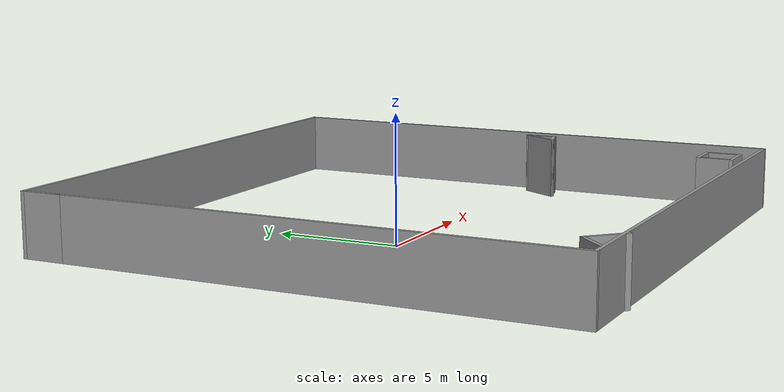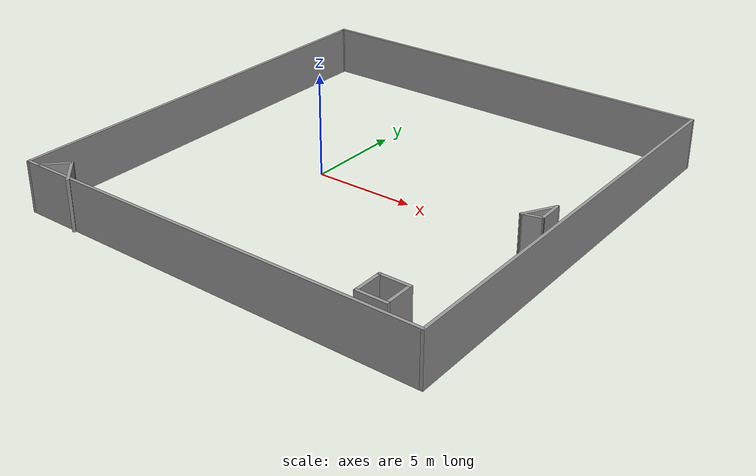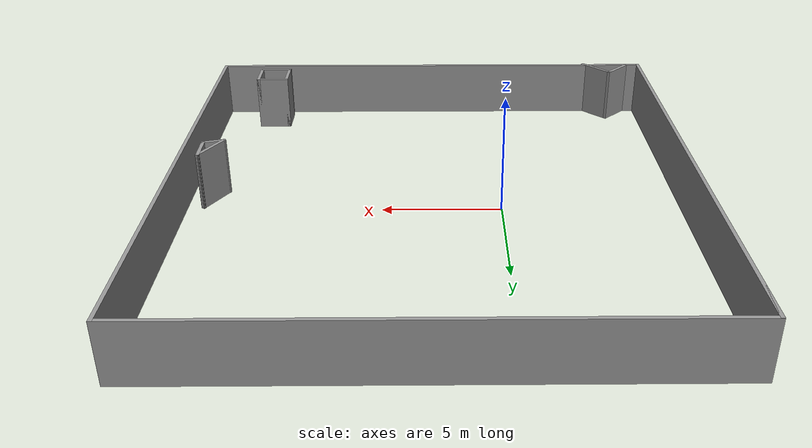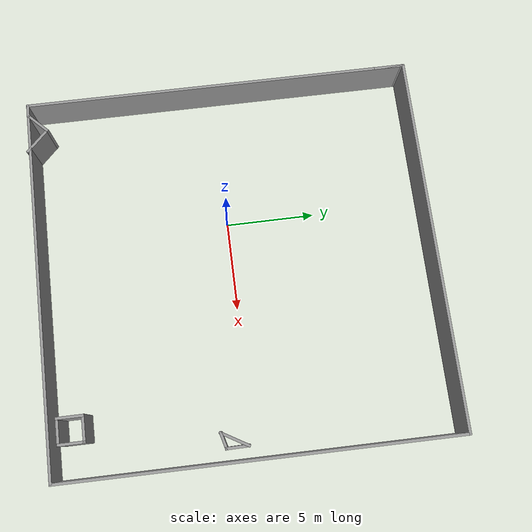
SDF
<?xml version='1.0'?>
<sdf version='1.7'>
  <model name='empty'>
    <pose>2.82851 0.215815 0 0 -0 0</pose>
    <link name='Wall_11'>
      <collision name='Wall_11_Collision'>
        <geometry>
          <box>
            <size>1.5 0.15 2.5</size>
          </box>
        </geometry>
        <pose>0 0 1.25 0 -0 0</pose>
      </collision>
      <visual name='Wall_11_Visual'>
        <pose>0 0 1.25 0 -0 0</pose>
        <geometry>
          <box>
            <size>1.5 0.15 2.5</size>
          </box>
        </geometry>
        <material>
          <script>
            <uri>file://media/materials/scripts/gazebo.material</uri>
            <name>Gazebo/Grey</name>
          </script>
          <ambient>1 1 1 1</ambient>
        </material>
        <meta>
          <layer>0</layer>
        </meta>
      </visual>
      <pose>7.16357 -9.52869 0 0 -0 1.5708</pose>
    </link>
    <link name='Wall_12'>
      <collision name='Wall_12_Collision'>
        <geometry>
          <box>
            <size>1.5 0.15 2.5</size>
          </box>
        </geometry>
        <pose>0 0 1.25 0 -0 0</pose>
      </collision>
      <visual name='Wall_12_Visual'>
        <pose>0 0 1.25 0 -0 0</pose>
        <geometry>
          <box>
            <size>1.5 0.15 2.5</size>
          </box>
        </geometry>
        <material>
          <script>
            <uri>file://media/materials/scripts/gazebo.material</uri>
            <name>Gazebo/Grey</name>
          </script>
          <ambient>1 1 1 1</ambient>
        </material>
        <meta>
          <layer>0</layer>
        </meta>
      </visual>
      <pose>7.83857 -8.85369 0 0 -0 0</pose>
    </link>
    <link name='Wall_13'>
      <collision name='Wall_13_Collision'>
        <geometry>
          <box>
            <size>1.5 0.15 2.5</size>
          </box>
        </geometry>
        <pose>0 0 1.25 0 -0 0</pose>
      </collision>
      <visual name='Wall_13_Visual'>
        <pose>0 0 1.25 0 -0 0</pose>
        <geometry>
          <box>
            <size>1.5 0.15 2.5</size>
          </box>
        </geometry>
        <material>
          <script>
            <uri>file://media/materials/scripts/gazebo.material</uri>
            <name>Gazebo/Grey</name>
          </script>
          <ambient>1 1 1 1</ambient>
        </material>
        <meta>
          <layer>0</layer>
        </meta>
      </visual>
      <pose>8.51357 -9.52869 0 0 -0 -1.5708</pose>
    </link>
    <link name='Wall_14'>
      <collision name='Wall_14_Collision'>
        <geometry>
          <box>
            <size>1.5 0.15 2.5</size>
          </box>
        </geometry>
        <pose>0 0 1.25 0 -0 0</pose>
      </collision>
      <visual name='Wall_14_Visual'>
        <pose>0 0 1.25 0 -0 0</pose>
        <geometry>
          <box>
            <size>1.5 0.15 2.5</size>
          </box>
        </geometry>
        <material>
          <script>
            <uri>file://media/materials/scripts/gazebo.material</uri>
            <name>Gazebo/Grey</name>
          </script>
          <ambient>1 1 1 1</ambient>
        </material>
        <meta>
          <layer>0</layer>
        </meta>
      </visual>
      <pose>7.83857 -10.2037 0 0 -0 3.14159</pose>
    </link>
    <link name='Wall_16'>
      <collision name='Wall_16_Collision'>
        <geometry>
          <box>
            <size>1.75 0.15 2.5</size>
          </box>
        </geometry>
        <pose>0 0 1.25 0 -0 0</pose>
      </collision>
      <visual name='Wall_16_Visual'>
        <pose>0 0 1.25 0 -0 0</pose>
        <geometry>
          <box>
            <size>1.75 0.15 2.5</size>
          </box>
        </geometry>
        <material>
          <script>
            <uri>file://media/materials/scripts/gazebo.material</uri>
            <name>Gazebo/Grey</name>
          </script>
          <ambient>1 1 1 1</ambient>
        </material>
        <meta>
          <layer>0</layer>
        </meta>
      </visual>
      <pose>9.27586 -1.17301 0 0 -0 -2.0944</pose>
    </link>
    <link name='Wall_17'>
      <collision name='Wall_17_Collision'>
        <geometry>
          <box>
            <size>1 0.15 2.5</size>
          </box>
        </geometry>
        <pose>0 0 1.25 0 -0 0</pose>
      </collision>
      <visual name='Wall_17_Visual'>
        <pose>0 0 1.25 0 -0 0</pose>
        <geometry>
          <box>
            <size>1 0.15 2.5</size>
          </box>
        </geometry>
        <material>
          <script>
            <uri>file://media/materials/scripts/gazebo.material</uri>
            <name>Gazebo/Grey</name>
          </script>
          <ambient>1 1 1 1</ambient>
        </material>
        <meta>
          <layer>0</layer>
        </meta>
      </visual>
      <pose>9.28638 -1.75583 0 0 -0 0.261799</pose>
    </link>
    <link name='Wall_18'>
      <collision name='Wall_18_Collision'>
        <geometry>
          <box>
            <size>1.31583 0.15 2.5</size>
          </box>
        </geometry>
        <pose>0 0 1.25 0 -0 0</pose>
      </collision>
      <visual name='Wall_18_Visual'>
        <pose>0 0 1.25 0 -0 0</pose>
        <geometry>
          <box>
            <size>1.31583 0.15 2.5</size>
          </box>
        </geometry>
        <material>
          <script>
            <uri>file://media/materials/scripts/gazebo.material</uri>
            <name>Gazebo/Grey</name>
          </script>
          <ambient>1 1 1 1</ambient>
        </material>
        <meta>
          <layer>0</layer>
        </meta>
      </visual>
      <pose>9.68638 -1.06301 0 0 -0 1.58884</pose>
    </link>
    <link name='Wall_2'>
      <collision name='Wall_2_Collision'>
        <geometry>
          <box>
            <size>21.5 0.15 2.5</size>
          </box>
        </geometry>
        <pose>0 0 1.25 0 -0 0</pose>
      </collision>
      <visual name='Wall_2_Visual'>
        <pose>0 0 1.25 0 -0 0</pose>
        <geometry>
          <box>
            <size>21.5 0.15 2.5</size>
          </box>
        </geometry>
        <material>
          <script>
            <uri>file://media/materials/scripts/gazebo.material</uri>
            <name>Gazebo/Grey</name>
          </script>
          <ambient>1 1 1 1</ambient>
        </material>
        <meta>
          <layer>0</layer>
        </meta>
      </visual>
      <pose>-10.425 -0.048231 0 0 -0 -1.5708</pose>
    </link>
    <link name='Wall_3'>
      <collision name='Wall_3_Collision'>
        <geometry>
          <box>
            <size>21 0.15 2.5</size>
          </box>
        </geometry>
        <pose>0 0 1.25 0 -0 0</pose>
      </collision>
      <visual name='Wall_3_Visual'>
        <pose>0 0 1.25 0 -0 0</pose>
        <geometry>
          <box>
            <size>21 0.15 2.5</size>
          </box>
        </geometry>
        <material>
          <script>
            <uri>file://media/materials/scripts/gazebo.material</uri>
            <name>Gazebo/Grey</name>
          </script>
          <ambient>1 1 1 1</ambient>
        </material>
        <meta>
          <layer>0</layer>
        </meta>
      </visual>
      <pose>-0 -10.7232 0 0 -0 0</pose>
    </link>
    <link name='Wall_4'>
      <collision name='Wall_4_Collision'>
        <geometry>
          <box>
            <size>21.75 0.15 2.5</size>
          </box>
        </geometry>
        <pose>0 0 1.25 0 -0 0</pose>
      </collision>
      <visual name='Wall_4_Visual'>
        <pose>0 0 1.25 0 -0 0</pose>
        <geometry>
          <box>
            <size>21.75 0.15 2.5</size>
          </box>
        </geometry>
        <material>
          <script>
            <uri>file://media/materials/scripts/gazebo.material</uri>
            <name>Gazebo/Grey</name>
          </script>
          <ambient>1 1 1 1</ambient>
        </material>
        <meta>
          <layer>0</layer>
        </meta>
      </visual>
      <pose>10.425 0.076769 0 0 -0 1.5708</pose>
    </link>
    <link name='Wall_5'>
      <collision name='Wall_5_Collision'>
        <geometry>
          <box>
            <size>21 0.15 2.5</size>
          </box>
        </geometry>
        <pose>0 0 1.25 0 -0 0</pose>
      </collision>
      <visual name='Wall_5_Visual'>
        <pose>0 0 1.25 0 -0 0</pose>
        <geometry>
          <box>
            <size>21 0.15 2.5</size>
          </box>
        </geometry>
        <material>
          <script>
            <uri>file://media/materials/scripts/gazebo.material</uri>
            <name>Gazebo/Grey</name>
          </script>
          <ambient>1 1 1 1</ambient>
        </material>
        <meta>
          <layer>0</layer>
        </meta>
      </visual>
      <pose>-0 10.8768 0 0 -0 3.14159</pose>
    </link>
    <link name='Wall_6'>
      <collision name='Wall_6_Collision'>
        <geometry>
          <box>
            <size>1.75 0.15 2.5</size>
          </box>
        </geometry>
        <pose>0 0 1.25 0 -0 0</pose>
      </collision>
      <visual name='Wall_6_Visual'>
        <pose>0 0 1.25 0 -0 0</pose>
        <geometry>
          <box>
            <size>1.75 0.15 2.5</size>
          </box>
        </geometry>
        <material>
          <script>
            <uri>file://media/materials/scripts/gazebo.material</uri>
            <name>Gazebo/Grey</name>
          </script>
          <ambient>1 1 1 1</ambient>
        </material>
        <meta>
          <layer>0</layer>
        </meta>
      </visual>
      <pose>-10.425 10.0768 0 0 -0 -1.5708</pose>
    </link>
    <link name='Wall_8'>
      <collision name='Wall_8_Collision'>
        <geometry>
          <box>
            <size>1.5 0.15 2.5</size>
          </box>
        </geometry>
        <pose>0 0 1.25 0 -0 0</pose>
      </collision>
      <visual name='Wall_8_Visual'>
        <pose>0 0 1.25 0 -0 0</pose>
        <geometry>
          <box>
            <size>1.5 0.15 2.5</size>
          </box>
        </geometry>
        <material>
          <script>
            <uri>file://media/materials/scripts/gazebo.material</uri>
            <name>Gazebo/Grey</name>
          </script>
          <ambient>1 1 1 1</ambient>
        </material>
        <meta>
          <layer>0</layer>
        </meta>
      </visual>
      <pose>-9.29383 -10.1916 0 0 -0 0.785398</pose>
    </link>
    <link name='Wall_9'>
      <collision name='Wall_9_Collision'>
        <geometry>
          <box>
            <size>1.75 0.15 2.5</size>
          </box>
        </geometry>
        <pose>0 0 1.25 0 -0 0</pose>
      </collision>
      <visual name='Wall_9_Visual'>
        <pose>0 0 1.25 0 -0 0</pose>
        <geometry>
          <box>
            <size>1.75 0.15 2.5</size>
          </box>
        </geometry>
        <material>
          <script>
            <uri>file://media/materials/scripts/gazebo.material</uri>
            <name>Gazebo/Grey</name>
          </script>
          <ambient>1 1 1 1</ambient>
        </material>
        <meta>
          <layer>0</layer>
        </meta>
      </visual>
      <pose>-8.25085 -10.28 0 0 -0 -0.785398</pose>
    </link>
    <static>1</static>
  </model>
</sdf>
